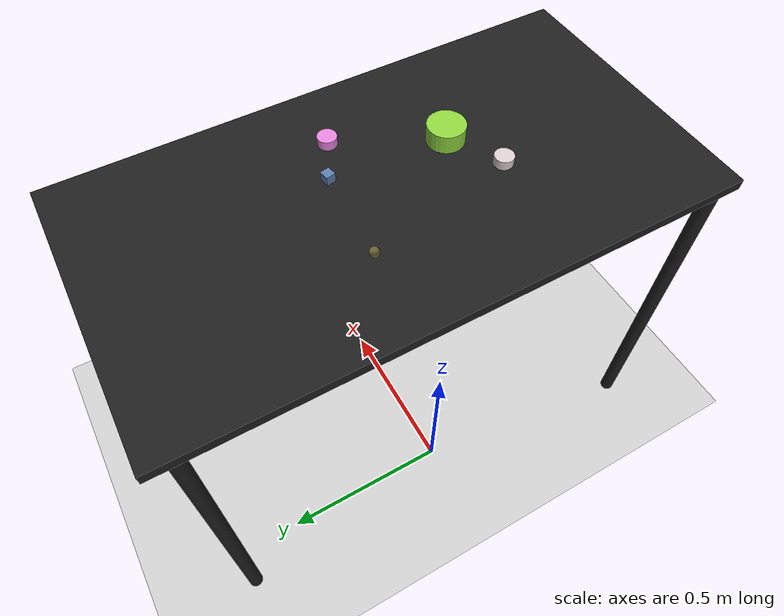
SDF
<?xml version="1.0" ?>
<sdf version="1.6">
  <world name="arm_world">
    <plugin filename="gz-sim-physics-system" name="gz::sim::systems::Physics">
      <engine>
        <filename>libgz-physics-bullet-featherstone-plugin.so</filename>
      </engine>
    </plugin>
    <plugin filename="gz-sim-user-commands-system" name="gz::sim::systems::UserCommands"/>
    <plugin filename="gz-sim-scene-broadcaster-system" name="gz::sim::systems::SceneBroadcaster"/>
    <plugin filename="gz-sim-sensors-system" name="gz::sim::systems::Sensors">
      <render_engine>ogre2</render_engine>
    </plugin>
    <gravity>0.0 0.0 -9.8</gravity>
    <scene>
      <shadows>false</shadows>
    </scene>
    <gui>
      <camera name="user_camera">
        <pose>0.75 -0.75 1.4 0 0.29 2.21</pose>
      </camera>
    </gui>
    <include>
      <uri>https://fuel.gazebosim.org/1.0/OpenRobotics/models/Sun</uri>
    </include>
    <model name="table">
      <static>true</static>
      <include>
        <uri>model://table</uri>
      </include>
      <pose>0.29 0 0 0 0 1.5708</pose>
    </model>
    <model name="ground_plane">
      <static>true</static>
      <link name="link">
        <collision name="collision">
          <geometry>
            <plane>
              <normal>0 0 1</normal>
            </plane>
          </geometry>
          <surface>
            <friction>
              <ode>
                <mu>1.0</mu>
                <mu2>1.0</mu2>
              </ode>
            </friction>
          </surface>
        </collision>
        <visual name="visual">
          <geometry>
            <plane>
              <normal>0 0 1</normal>
              <size>100 100</size>
            </plane>
          </geometry>
          <material>
            <ambient>0.8 0.8 0.8 1</ambient>
            <diffuse>0.8 0.8 0.8 1</diffuse>
            <specular>0.8 0.8 0.8 1</specular>
          </material>
        </visual>
      </link>
    </model>
    <model name="cylinder_m_0">
      <pose>0.47 0.072 1.05 0 0 2.11</pose>
      <link name="cylinder_m_0_link">
        <inertial>
          <mass>0.05</mass>
          <inertia>
            <ixx>2.04e-7</ixx>
            <iyy>2.04e-7</iyy>
            <izz>3.9e-8</izz>
            <ixy>0</ixy>
            <ixz>0</ixz>
            <iyz>0</iyz>
          </inertia>
        </inertial>
        <collision name="cylinder_m_0_collision">
          <geometry>
            <cylinder>
              <radius>0.025</radius>
              <length>0.025</length>
            </cylinder>
          </geometry>
          <surface>
            <friction>
              <ode>
                <mu>0.8</mu>
                <mu2>0.8</mu2>
                <fdir1>0 0 1</fdir1>
                <slip1>0.001</slip1>
                <slip2>0.001</slip2>
              </ode>
              <torsional>
                <coefficient>0.1</coefficient>
                <surface_radius>0.015</surface_radius>
                <use_patch_radius>true</use_patch_radius>
              </torsional>
            </friction>
            <contact>
              <ode>
                <kp>1e5</kp>
                <kd>10</kd>
                <max_vel>0.1</max_vel>
                <min_depth>0.001</min_depth>
                <soft_cfm>0.01</soft_cfm>
                <soft_erp>0.2</soft_erp>
              </ode>
            </contact>
            <bounce>
              <restitution_coefficient>0.2</restitution_coefficient>
              <threshold>0.01</threshold>
            </bounce>
          </surface>
        </collision>
        <visual name="cylinder_m_0_visual">
          <geometry>
            <cylinder>
              <radius>0.025</radius>
              <length>0.025</length>
            </cylinder>
          </geometry>
          <material>
            <ambient>0.9 0.52 0.86 1</ambient>
            <diffuse>0.9 0.52 0.86 1</diffuse>
          </material>
        </visual>
        <velocity_decay>
          <linear>1</linear>
          <angular>1</angular>
        </velocity_decay>
      </link>
    </model>
    <model name="sphere_s_1">
      <pose>0.108 0.139 1.05 0 0 5.34</pose>
      <link name="sphere_s_1_link">
        <inertial>
          <mass>0.05</mass>
          <inertia>
            <ixx>2.04e-7</ixx>
            <iyy>2.04e-7</iyy>
            <izz>3.9e-8</izz>
            <ixy>0</ixy>
            <ixz>0</ixz>
            <iyz>0</iyz>
          </inertia>
        </inertial>
        <collision name="sphere_s_1_collision">
          <geometry>
            <sphere>
              <radius>0.0125</radius>
            </sphere>
          </geometry>
          <surface>
            <friction>
              <ode>
                <mu>0.8</mu>
                <mu2>0.8</mu2>
                <fdir1>0 0 1</fdir1>
                <slip1>0.001</slip1>
                <slip2>0.001</slip2>
              </ode>
              <torsional>
                <coefficient>0.1</coefficient>
                <surface_radius>0.015</surface_radius>
                <use_patch_radius>true</use_patch_radius>
              </torsional>
            </friction>
            <contact>
              <ode>
                <kp>1e5</kp>
                <kd>10</kd>
                <max_vel>0.1</max_vel>
                <min_depth>0.001</min_depth>
                <soft_cfm>0.01</soft_cfm>
                <soft_erp>0.2</soft_erp>
              </ode>
            </contact>
            <bounce>
              <restitution_coefficient>0.2</restitution_coefficient>
              <threshold>0.01</threshold>
            </bounce>
          </surface>
        </collision>
        <visual name="sphere_s_1_visual">
          <geometry>
            <sphere>
              <radius>0.0125</radius>
            </sphere>
          </geometry>
          <material>
            <ambient>0.43 0.39 0.21 1</ambient>
            <diffuse>0.43 0.39 0.21 1</diffuse>
          </material>
        </visual>
        <velocity_decay>
          <linear>1</linear>
          <angular>1</angular>
        </velocity_decay>
      </link>
    </model>
    <model name="cylinder_l_2">
      <pose>0.352 -0.195 1.05 0 0 1.81</pose>
      <link name="cylinder_l_2_link">
        <inertial>
          <mass>0.05</mass>
          <inertia>
            <ixx>2.04e-7</ixx>
            <iyy>2.04e-7</iyy>
            <izz>3.9e-8</izz>
            <ixy>0</ixy>
            <ixz>0</ixz>
            <iyz>0</iyz>
          </inertia>
        </inertial>
        <collision name="cylinder_l_2_collision">
          <geometry>
            <cylinder>
              <radius>0.05</radius>
              <length>0.05</length>
            </cylinder>
          </geometry>
          <surface>
            <friction>
              <ode>
                <mu>0.8</mu>
                <mu2>0.8</mu2>
                <fdir1>0 0 1</fdir1>
                <slip1>0.001</slip1>
                <slip2>0.001</slip2>
              </ode>
              <torsional>
                <coefficient>0.1</coefficient>
                <surface_radius>0.015</surface_radius>
                <use_patch_radius>true</use_patch_radius>
              </torsional>
            </friction>
            <contact>
              <ode>
                <kp>1e5</kp>
                <kd>10</kd>
                <max_vel>0.1</max_vel>
                <min_depth>0.001</min_depth>
                <soft_cfm>0.01</soft_cfm>
                <soft_erp>0.2</soft_erp>
              </ode>
            </contact>
            <bounce>
              <restitution_coefficient>0.2</restitution_coefficient>
              <threshold>0.01</threshold>
            </bounce>
          </surface>
        </collision>
        <visual name="cylinder_l_2_visual">
          <geometry>
            <cylinder>
              <radius>0.05</radius>
              <length>0.05</length>
            </cylinder>
          </geometry>
          <material>
            <ambient>0.56 0.83 0.24 1</ambient>
            <diffuse>0.56 0.83 0.24 1</diffuse>
          </material>
        </visual>
        <velocity_decay>
          <linear>1</linear>
          <angular>1</angular>
        </velocity_decay>
      </link>
    </model>
    <model name="cube_s_3">
      <pose>0.358 0.126 1.05 0 0 1.77</pose>
      <link name="cube_s_3_link">
        <inertial>
          <mass>0.05</mass>
          <inertia>
            <ixx>2.04e-7</ixx>
            <iyy>2.04e-7</iyy>
            <izz>3.9e-8</izz>
            <ixy>0</ixy>
            <ixz>0</ixz>
            <iyz>0</iyz>
          </inertia>
        </inertial>
        <collision name="cube_s_3_collision">
          <geometry>
            <box>
              <size>0.025 0.025 0.025</size>
            </box>
          </geometry>
          <surface>
            <friction>
              <ode>
                <mu>0.8</mu>
                <mu2>0.8</mu2>
                <fdir1>0 0 1</fdir1>
                <slip1>0.001</slip1>
                <slip2>0.001</slip2>
              </ode>
              <torsional>
                <coefficient>0.1</coefficient>
                <surface_radius>0.015</surface_radius>
                <use_patch_radius>true</use_patch_radius>
              </torsional>
            </friction>
            <contact>
              <ode>
                <kp>1e5</kp>
                <kd>10</kd>
                <max_vel>0.1</max_vel>
                <min_depth>0.001</min_depth>
                <soft_cfm>0.01</soft_cfm>
                <soft_erp>0.2</soft_erp>
              </ode>
            </contact>
            <bounce>
              <restitution_coefficient>0.2</restitution_coefficient>
              <threshold>0.01</threshold>
            </bounce>
          </surface>
        </collision>
        <visual name="cube_s_3_visual">
          <geometry>
            <box>
              <size>0.025 0.025 0.025</size>
            </box>
          </geometry>
          <material>
            <ambient>0.36 0.49 0.68 1</ambient>
            <diffuse>0.36 0.49 0.68 1</diffuse>
          </material>
        </visual>
        <velocity_decay>
          <linear>1</linear>
          <angular>1</angular>
        </velocity_decay>
      </link>
    </model>
    <model name="cylinder_m_4">
      <pose>0.204 -0.265 1.05 0 0 6.25</pose>
      <link name="cylinder_m_4_link">
        <inertial>
          <mass>0.05</mass>
          <inertia>
            <ixx>2.04e-7</ixx>
            <iyy>2.04e-7</iyy>
            <izz>3.9e-8</izz>
            <ixy>0</ixy>
            <ixz>0</ixz>
            <iyz>0</iyz>
          </inertia>
        </inertial>
        <collision name="cylinder_m_4_collision">
          <geometry>
            <cylinder>
              <radius>0.025</radius>
              <length>0.025</length>
            </cylinder>
          </geometry>
          <surface>
            <friction>
              <ode>
                <mu>0.8</mu>
                <mu2>0.8</mu2>
                <fdir1>0 0 1</fdir1>
                <slip1>0.001</slip1>
                <slip2>0.001</slip2>
              </ode>
              <torsional>
                <coefficient>0.1</coefficient>
                <surface_radius>0.015</surface_radius>
                <use_patch_radius>true</use_patch_radius>
              </torsional>
            </friction>
            <contact>
              <ode>
                <kp>1e5</kp>
                <kd>10</kd>
                <max_vel>0.1</max_vel>
                <min_depth>0.001</min_depth>
                <soft_cfm>0.01</soft_cfm>
                <soft_erp>0.2</soft_erp>
              </ode>
            </contact>
            <bounce>
              <restitution_coefficient>0.2</restitution_coefficient>
              <threshold>0.01</threshold>
            </bounce>
          </surface>
        </collision>
        <visual name="cylinder_m_4_visual">
          <geometry>
            <cylinder>
              <radius>0.025</radius>
              <length>0.025</length>
            </cylinder>
          </geometry>
          <material>
            <ambient>0.86 0.8 0.81 1</ambient>
            <diffuse>0.86 0.8 0.81 1</diffuse>
          </material>
        </visual>
        <velocity_decay>
          <linear>1</linear>
          <angular>1</angular>
        </velocity_decay>
      </link>
    </model>
  </world>
</sdf>

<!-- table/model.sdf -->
<sdf version="1.5">
  <model name="table">
    <static>true</static>
    <link name="link">
      <collision name="surface">
        <pose>0 0 1.0 0 0 0</pose>
        <geometry>
          <box>
            <size>1.5 0.8 0.03</size>
          </box>
        </geometry>
        <surface>
          <friction>
            <ode>
              <mu>0.6</mu>
              <mu2>0.6</mu2>
            </ode>
          </friction>
        </surface>
      </collision>
      <visual name="surface">
        <pose>0 0 1.0 0 0 0</pose>
        <geometry>
          <box>
            <size>1.5 0.8 0.03</size>
          </box>
        </geometry>
        <material>
          <script>
            <uri>file://media/materials/scripts/gazebo.material</uri>
            <name>Gazebo/Black</name>
          </script>
        </material>
      </visual>
      <collision name="front_left_leg">
        <pose>0.68 0.38 0.5 0 0 0</pose>
        <geometry>
          <cylinder>
            <radius>0.02</radius>
            <length>1.0</length>
          </cylinder>
        </geometry>
      </collision>
      <visual name="front_left_leg">
        <pose>0.68 0.38 0.5 0 0 0</pose>
        <geometry>
          <cylinder>
            <radius>0.02</radius>
            <length>1.0</length>
          </cylinder>
        </geometry>
        <material>
          <script>
            <uri>file://media/materials/scripts/gazebo.material</uri>
            <name>Gazebo/Black</name>
          </script>
        </material>
      </visual>
      <collision name="front_right_leg">
        <pose>0.68 -0.38 0.5 0 0 0</pose>
        <geometry>
          <cylinder>
            <radius>0.02</radius>
            <length>1.0</length>
          </cylinder>
        </geometry>
      </collision>
      <visual name="front_right_leg">
        <pose>0.68 -0.38 0.5 0 0 0</pose>
        <geometry>
          <cylinder>
            <radius>0.02</radius>
            <length>1.0</length>
          </cylinder>
        </geometry>
        <material>
          <script>
            <uri>file://media/materials/scripts/gazebo.material</uri>
            <name>Gazebo/Black</name>
          </script>
        </material>
      </visual>
      <collision name="back_right_leg">
        <pose>-0.68 -0.38 0.5 0 0 0</pose>
        <geometry>
          <cylinder>
            <radius>0.02</radius>
            <length>1.0</length>
          </cylinder>
        </geometry>
      </collision>
      <visual name="back_right_leg">
        <pose>-0.68 -0.38 0.5 0 0 0</pose>
        <geometry>
          <cylinder>
            <radius>0.02</radius>
            <length>1.0</length>
          </cylinder>
        </geometry>
        <material>
          <script>
            <uri>file://media/materials/scripts/gazebo.material</uri>
            <name>Gazebo/Black</name>
          </script>
        </material>
      </visual>
      <collision name="back_left_leg">
        <pose>-0.68 0.38 0.5 0 0 0</pose>
        <geometry>
          <cylinder>
            <radius>0.02</radius>
            <length>1.0</length>
          </cylinder>
        </geometry>
      </collision>
      <visual name="back_left_leg">
        <pose>-0.68 0.38 0.5 0 0 0</pose>
        <geometry>
          <cylinder>
            <radius>0.02</radius>
            <length>1.0</length>
          </cylinder>
        </geometry>
        <material>
          <script>
            <uri>file://media/materials/scripts/gazebo.material</uri>
            <name>Gazebo/Black</name>
          </script>
        </material>
      </visual>
    </link>
  </model>
</sdf>
